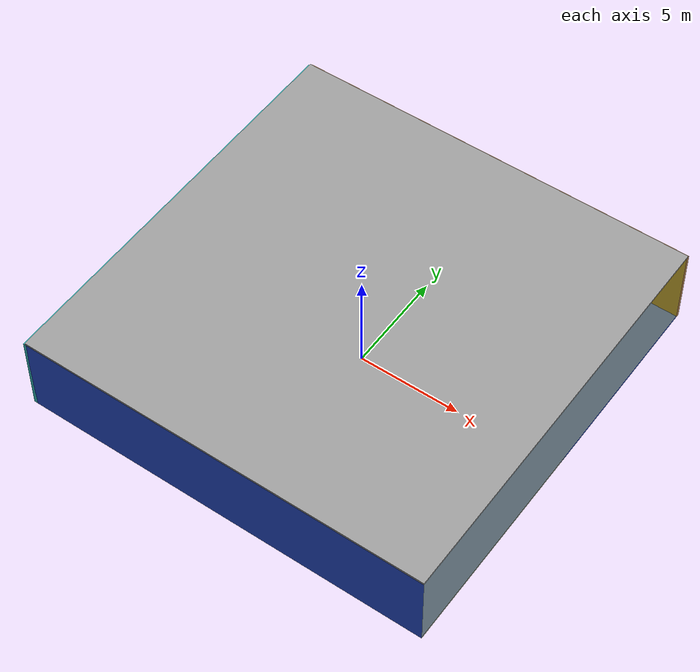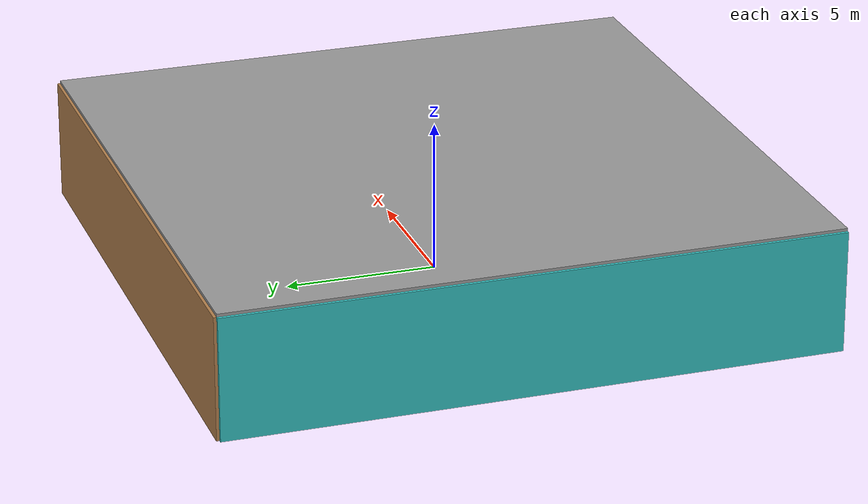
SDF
<sdf version="1.4">
 <world name="default">
  <physics type="ode">
   <max_step_size>0.001</max_step_size>
   <real_time_factor>1</real_time_factor>
   <real_time_update_rate>1000</real_time_update_rate>
   <gravity>0 0 -9.8</gravity>
  </physics>
  <scene><ambient>0.4 0.4 0.4 1</ambient><background>0.7 0.7 0.7 1</background><shadows>1</shadows></scene>
  <model name="Surrounding">
   <static>1</static>
   <link name="Ceiling">
    <collision name="Ceiling_Collision"><geometry><box><size>20 20 0.1</size></box></geometry></collision>
    <visual name="Ceiling_Visual">
     <geometry><box><size>20 20 0.1</size></box></geometry>
     <material>
      <script><uri>file://media/materials/scripts/gazebo.material</uri><name>Gazebo/Grey</name></script>
     </material>
    </visual>
    <pose>0 0 4.05 0 0 0</pose>
   </link>
   <link name="Wall_South">
    <collision name="Wall_South_Collision">
     <geometry><box><size>20 0 4</size></box></geometry>
     <pose>0 0 2 0 -0 0</pose>
    </collision>
    <visual name="Wall_South_Visual">
     <pose>0 0 2 0 -0 0</pose>
     <geometry><box><size>20 0 4</size></box></geometry>
     <material>
      <script><uri>file://media/materials/scripts/gazebo.material</uri><name>Gazebo/BlueLaser</name></script>
     </material>
    </visual>
    <velocity_decay><linear>0</linear><angular>0</angular></velocity_decay>
    <pose>0 -10 0 0 -0 0</pose>
   </link>
   <link name="Wall_East">
    <collision name="Wall_21_Collision">
     <geometry><box><size>20 0 4</size></box></geometry>
     <pose>0 0 2 0 -0 0</pose>
    </collision>
    <visual name="Wall_21_Visual">
     <pose>0 0 2 0 -0 0</pose>
     <geometry><box><size>20 0 4</size></box></geometry>
     <material>
      <script>
       <uri>file://media/materials/scripts/gazebo.material</uri>
       <name>Gazebo/YellowTransparent</name>
      </script>
     </material>
    </visual>
    <velocity_decay><linear>0</linear><angular>0</angular></velocity_decay>
    <pose>10 0 0 0 -0 1.5708</pose>
   </link>
   <link name="Wall_North">
    <collision name="Wall_22_Collision">
     <geometry><box><size>20 0.2 4</size></box></geometry>
     <pose>0 0 2 0 -0 0</pose>
    </collision>
    <visual name="Wall_22_Visual">
     <pose>0 0 2 0 -0 0</pose>
     <geometry><box><size>20 0.2 4</size></box></geometry>
     <material>
      <script><uri>file://media/materials/scripts/gazebo.material</uri><name>Gazebo/WoodPallet</name></script>
     </material>
    </visual>
    <velocity_decay><linear>0</linear><angular>0</angular></velocity_decay>
    <pose>0 10 0 0 -0 0</pose>
   </link>
   <link name="Wall_West">
    <collision name="Wall_23_Collision">
     <geometry><box><size>20 0.2 4</size></box></geometry>
     <pose>0 0 2 0 -0 0</pose>
    </collision>
    <visual name="Wall_23_Visual">
     <pose>0 0 2 0 -0 0</pose>
     <geometry><box><size>20 0.2 4</size></box></geometry>
     <material>
      <script><uri>file://media/materials/scripts/gazebo.material</uri><name>Gazebo/TurquoiseGlow</name></script>
     </material>
    </visual>
    <velocity_decay><linear>0</linear><angular>0</angular></velocity_decay>
    <pose>-10 0 0 0 0 -1.5708</pose>
   </link>
   <link name="Ground_link">
    <collision name="collision">
     <pose>0 0 .05 0 -0 0</pose>
     <geometry><box><size>20 20 0.1</size></box></geometry>
    </collision>
    <visual name="visual">
     <pose>0 0 .05 0 -0 0</pose>
     <geometry><box><size>20 20 0.1</size></box></geometry>
     <material>
      <script><uri>file://media/materials/scripts/gazebo.material</uri><name>Gazebo/BlueGlow</name></script>
     </material>
    </visual>
   </link>
   <static>1</static>
  </model>
  <spherical_coordinates>
   <surface_model>EARTH_WGS84</surface_model>
   <latitude_deg>0</latitude_deg>
   <longitude_deg>0</longitude_deg>
   <elevation>0</elevation>
   <heading_deg>0</heading_deg>
  </spherical_coordinates>
  <light name="lightball_0" type="diffuse">
   <diffuse>0.8 0.8 0.8 1</diffuse>
   <specular>0.2 0.2 0.2 1</specular>
   <attenuation>
    <range>100</range>
    <constant>0.7</constant>
    <linear>0.01</linear>
    <quadratic>0.001</quadratic>
   </attenuation>
   <direction>-0.5 0.1 -0.9</direction>
   <pose>3.55845850325 -6.72735919545 3.46662264794 0 0 0</pose>
  </light>
  <light name="lightball_1" type="diffuse">
   <diffuse>0.8 0.8 0.8 1</diffuse>
   <specular>0.2 0.2 0.2 1</specular>
   <attenuation>
    <range>100</range>
    <constant>0.7</constant>
    <linear>0.01</linear>
    <quadratic>0.001</quadratic>
   </attenuation>
   <direction>-0.5 0.1 -0.9</direction>
   <pose>-0.657201428274 -1.68512240635 3.2231824823 0 0 0</pose>
  </light>
  <light name="lightball_2" type="diffuse">
   <diffuse>0.8 0.8 0.8 1</diffuse>
   <specular>0.2 0.2 0.2 1</specular>
   <attenuation>
    <range>100</range>
    <constant>0.7</constant>
    <linear>0.01</linear>
    <quadratic>0.001</quadratic>
   </attenuation>
   <direction>-0.5 0.1 -0.9</direction>
   <pose>0.972845954872 1.02797178351 3.12231742599 0 0 0</pose>
  </light>
  <light name="lightball_3" type="diffuse">
   <diffuse>0.8 0.8 0.8 1</diffuse>
   <specular>0.2 0.2 0.2 1</specular>
   <attenuation>
    <range>100</range>
    <constant>0.7</constant>
    <linear>0.01</linear>
    <quadratic>0.001</quadratic>
   </attenuation>
   <direction>-0.5 0.1 -0.9</direction>
   <pose>-6.40773563351 7.17833876745 2.54073130732 0 0 0</pose>
  </light>
  <light name="lightball_4" type="diffuse">
   <diffuse>0.8 0.8 0.8 1</diffuse>
   <specular>0.2 0.2 0.2 1</specular>
   <attenuation>
    <range>100</range>
    <constant>0.7</constant>
    <linear>0.01</linear>
    <quadratic>0.001</quadratic>
   </attenuation>
   <direction>-0.5 0.1 -0.9</direction>
   <pose>0.018688841885 0.588862705459 3.66377776507 0 0 0</pose>
  </light>
  <light name="lightball_5" type="diffuse">
   <diffuse>0.8 0.8 0.8 1</diffuse>
   <specular>0.2 0.2 0.2 1</specular>
   <attenuation>
    <range>100</range>
    <constant>0.7</constant>
    <linear>0.01</linear>
    <quadratic>0.001</quadratic>
   </attenuation>
   <direction>-0.5 0.1 -0.9</direction>
   <pose>2.12081366443 9.25017523118 3.50156811292 0 0 0</pose>
  </light>
  <light name="lightball_6" type="diffuse">
   <diffuse>0.8 0.8 0.8 1</diffuse>
   <specular>0.2 0.2 0.2 1</specular>
   <attenuation>
    <range>100</range>
    <constant>0.7</constant>
    <linear>0.01</linear>
    <quadratic>0.001</quadratic>
   </attenuation>
   <direction>-0.5 0.1 -0.9</direction>
   <pose>5.74253735076 -6.00512056189 0.785468711725 0 0 0</pose>
  </light>
  <light name="lightball_7" type="diffuse">
   <diffuse>0.8 0.8 0.8 1</diffuse>
   <specular>0.2 0.2 0.2 1</specular>
   <attenuation>
    <range>100</range>
    <constant>0.7</constant>
    <linear>0.01</linear>
    <quadratic>0.001</quadratic>
   </attenuation>
   <direction>-0.5 0.1 -0.9</direction>
   <pose>5.62816836114 -6.10089453739 2.8000352526 0 0 0</pose>
  </light>
  <include><uri>model://cabinet</uri><pose>-7.83185758198 -6.82360529614 0 0 0 0.375922543964</pose></include>
  <include>
   <uri>model://textured_shapes</uri>
   <pose>-5.03966085662 8.24714874708 0 0 0 1.18896709717</pose>
  </include>
  <include>
   <uri>model://robocup_3Dsim_goal</uri>
   <pose>-1.98467257781 -7.17751692458 0 0 0 2.32087194406</pose>
  </include>
  <include><uri>model://table</uri><pose>-1.92086994184 1.42434149302 0 0 0 2.81321267714</pose></include>
  <include>
   <uri>model://textured_shapes</uri>
   <pose>-1.46546522654 4.43208784237 0 0 0 2.89029462213</pose>
  </include>
  <include>
   <uri>model://construction_cone</uri>
   <pose>0.972131861397 -4.76433106687 0 0 0 0.434144731811</pose>
  </include>
  <include><uri>model://cabinet</uri><pose>0.972993842175 4.33799005915 0 0 0 2.06662406756</pose></include>
 </world>
</sdf>

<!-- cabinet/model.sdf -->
<sdf version="1.5">
  <model name="cabinet">
    <static>true</static>
    <link name="cabinet_bottom_plate">
      <inertial>
        <pose>0 0 -1 0 0 0</pose>
        <inertia>
          <ixx>2.050000</ixx>
          <ixy>0</ixy>
          <ixz>0</ixz>
          <iyy>2.050000</iyy>
          <iyz>0</iyz>
          <izz>2.050000</izz>
        </inertia>
        <mass>25.000000</mass>
      </inertial>
      <collision name="cabinet_bottom_plate_geom">
        <pose>0 0 0.010000 0 0 0</pose>
        <geometry>
          <box>
            <size>0.450000 0.450000 0.020000</size>
          </box>
        </geometry>
      </collision>
      <visual name="cabinet_bottom_plate_geom_visual">
        <pose>0 0 0.010000 0 0 0</pose>
        <geometry>
          <box>
            <size>0.450000 0.450000 0.020000</size>
          </box>
        </geometry>
        <material>
          <script>
            <uri>model://media/materials/scripts/gazebo.material</uri>
            <name>Gazebo/Wood</name>
          </script>
        </material>
      </visual>
      <collision name="cabinet_bottom_plate_geom_cabinet_back_plate">
        <pose>0.235000 0 0.510000 0 0 0</pose>
        <geometry>
          <box>
            <size>0.020000 0.450000 1.020000</size>
          </box>
        </geometry>
      </collision>
      <visual name="cabinet_bottom_plate_geom_cabinet_back_plate_visual">
        <pose>0.235000 0 0.510000 0 0 0</pose>
        <geometry>
          <box>
            <size>0.020000 0.450000 1.020000</size>
          </box>
        </geometry>
        <material>
          <script>
            <uri>model://media/materials/scripts/gazebo.material</uri>
            <name>Gazebo/Wood</name>
          </script>
        </material>
      </visual>
      <collision name="cabinet_bottom_plate_geom_cabinet_left_plate">
        <pose>0 0.235000 0.510000 0 0 0</pose>
        <geometry>
          <box>
            <size>0.450000 0.020000 1.020000</size>
          </box>
        </geometry>
      </collision>
      <visual name="cabinet_bottom_plate_geom_cabinet_left_plate_visual">
        <pose>0 0.235000 0.510000 0 0 0</pose>
        <geometry>
          <box>
            <size>0.450000 0.020000 1.020000</size>
          </box>
        </geometry>
        <material>
          <script>
            <uri>model://media/materials/scripts/gazebo.material</uri>
            <name>Gazebo/Wood</name>
          </script>
        </material>
      </visual>
      <collision name="cabinet_bottom_plate_geom_cabinet_middle_plate">
        <pose>0 0 0.510000 0 0 0</pose>
        <geometry>
          <box>
            <size>0.450000 0.450000 0.020000</size>
          </box>
        </geometry>
      </collision>
      <visual name="cabinet_bottom_plate_geom_cabinet_middle_plate_visual">
        <pose>0 0 0.510000 0 0 0</pose>
        <geometry>
          <box>
            <size>0.450000 0.450000 0.020000</size>
          </box>
        </geometry>
        <material>
          <script>
            <uri>model://media/materials/scripts/gazebo.material</uri>
            <name>Gazebo/Wood</name>
          </script>
        </material>
      </visual>
      <collision name="cabinet_bottom_plate_geom_cabinet_right_plate">
        <pose>0 -0.235000 0.510000 0 0 0</pose>
        <geometry>
          <box>
            <size>0.450000 0.020000 1.020000</size>
          </box>
        </geometry>
      </collision>
      <visual name="cabinet_bottom_plate_geom_cabinet_right_plate_visual">
        <pose>0 -0.235000 0.510000 0 0 0</pose>
        <geometry>
          <box>
            <size>0.450000 0.020000 1.020000</size>
          </box>
        </geometry>
        <material>
          <script>
            <uri>model://media/materials/scripts/gazebo.material</uri>
            <name>Gazebo/Wood</name>
          </script>
        </material>
      </visual>
      <collision name="cabinet_bottom_plate_geom_cabinet_top_plate">
        <pose>0 0 1.010000 0 0 0</pose>
        <geometry>
          <box>
            <size>0.450000 0.450000 0.020000</size>
          </box>
        </geometry>
      </collision>
      <visual name="cabinet_bottom_plate_geom_cabinet_top_plate_visual">
        <pose>0 0 1.010000 0 0 0</pose>
        <geometry>
          <box>
            <size>0.450000 0.450000 0.020000</size>
          </box>
        </geometry>
        <material>
          <script>
            <uri>model://media/materials/scripts/gazebo.material</uri>
            <name>Gazebo/Wood</name>
          </script>
        </material>
      </visual>
    </link>
  </model>
</sdf>

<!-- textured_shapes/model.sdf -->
<sdf version="1.6">
  <model name="textured_shapes">
    <pose>0 0 0.5 0 0 0</pose>
    <link name="box">
      <pose>0 -1.5 0 0 0 0</pose>
      <collision name="collision">
        <geometry>
          <box>
            <size>1 1 1</size>
          </box>
        </geometry>
      </collision>
      <visual name="visual">
        <geometry>
          <box>
            <size>1 1 1</size>
          </box>
        </geometry>
        <material>
          <script>
            <uri>model://../model_source/models/textured_shapes/materials/scripts</uri>
            <uri>model://../model_source/models/textured_shapes/materials/textures</uri>
            <name>TexturedShape/Squares</name>
          </script>
        </material>
      </visual>
    </link>
    <link name="sphere">
      <collision name="collision">
        <geometry>
          <sphere>
            <radius>0.5</radius>
          </sphere>
        </geometry>
      </collision>
      <visual name="visual">
        <geometry>
          <sphere>
            <radius>0.5</radius>
          </sphere>
        </geometry>
        <material>
          <script>
            <uri>model://../model_source/models/textured_shapes/materials/scripts</uri>
            <uri>model://../model_source/models/textured_shapes/materials/textures</uri>
            <name>TexturedShape/Squares</name>
          </script>
        </material>
      </visual>
    </link>
    <link name="cylinder">
      <pose>0 1.5 0 0 0 0</pose>
      <collision name="collision">
        <geometry>
          <cylinder>
            <radius>0.5</radius>
            <length>1</length>
          </cylinder>
        </geometry>
      </collision>
      <visual name="visual">
        <geometry>
          <cylinder>
            <radius>0.5</radius>
            <length>1</length>
          </cylinder>
        </geometry>
        <material>
          <script>
            <uri>model://../model_source/models/textured_shapes/materials/scripts</uri>
            <uri>model://../model_source/models/textured_shapes/materials/textures</uri>
            <name>TexturedShape/Squares</name>
          </script>
        </material>
      </visual>
    </link>
  </model>
</sdf>

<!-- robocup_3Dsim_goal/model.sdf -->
<sdf version="1.5">
  <model name="robocup_3d_goal">
    <static>true</static>
    <link name="left_post">
      <pose>0 1.05 0.45 0 0 0</pose>
      <collision name="collision">
        <geometry>
          <cylinder>
            <radius>0.05</radius>
            <length>0.9</length>
          </cylinder>
        </geometry>
      </collision>
      <visual name="visual">
        <geometry>
          <cylinder>
            <radius>0.05</radius>
            <length>0.9</length>
          </cylinder>
        </geometry>
        <material>
          <script>
            <uri>file://media/materials/scripts/gazebo.material</uri>
            <name>Gazebo/ZincYellow</name>
          </script>
        </material>
      </visual>
    </link>
    <link name="left_support_horiz_lower">
      <pose>0.30 1.05 0.01 0 0 0</pose>
      <collision name="collision">
        <geometry>
          <box>
            <size>0.50 0.02 0.02</size>
          </box>
        </geometry>
      </collision>
      <visual name="visual">
        <geometry>
          <box>
            <size>0.50 0.02 0.02</size>
          </box>
        </geometry>
        <material>
          <script>
            <uri>file://media/materials/scripts/gazebo.material</uri>
            <name>Gazebo/White</name>
          </script>
        </material>
      </visual>
    </link>
    <link name="left_support_horiz_upper">
      <pose>0.30 1.05 0.79 0 0 0</pose>
      <collision name="collision">
        <geometry>
          <box>
            <size>0.50 0.02 0.02</size>
          </box>
        </geometry>
      </collision>
      <visual name="visual">
        <geometry>
          <box>
            <size>0.50 0.02 0.02</size>
          </box>
        </geometry>
        <material>
          <script>
            <uri>file://media/materials/scripts/gazebo.material</uri>
            <name>Gazebo/White</name>
          </script>
        </material>
      </visual>
    </link>
    <link name="left_support_vertical">
      <pose>0.56 1.05 0.4 0 1.5708 0</pose>
      <collision name="collision">
        <geometry>
          <box>
            <size>0.80 0.02 0.02</size>
          </box>
        </geometry>
      </collision>
      <visual name="visual">
        <geometry>
          <box>
            <size>0.80 0.02 0.02</size>
          </box>
        </geometry>
        <material>
          <script>
            <uri>file://media/materials/scripts/gazebo.material</uri>
            <name>Gazebo/White</name>
          </script>
        </material>
      </visual>
    </link>
    <link name="right_support_horiz_lower">
      <pose>0.30 -1.05 0.01 0 0 0</pose>
      <collision name="collision">
        <geometry>
          <box>
            <size>0.50 0.02 0.02</size>
          </box>
        </geometry>
      </collision>
      <visual name="visual">
        <geometry>
          <box>
            <size>0.50 0.02 0.02</size>
          </box>
        </geometry>
        <material>
          <script>
            <uri>file://media/materials/scripts/gazebo.material</uri>
            <name>Gazebo/White</name>
          </script>
        </material>
      </visual>
    </link>
    <link name="right_support_horiz_upper">
      <pose>0.30 -1.05 0.79 0 0 0</pose>
      <collision name="collision">
        <geometry>
          <box>
            <size>0.50 0.02 0.02</size>
          </box>
        </geometry>
      </collision>
      <visual name="visual">
        <geometry>
          <box>
            <size>0.50 0.02 0.02</size>
          </box>
        </geometry>
        <material>
          <script>
            <uri>file://media/materials/scripts/gazebo.material</uri>
            <name>Gazebo/White</name>
          </script>
        </material>
      </visual>
    </link>
    <link name="right_support_vertical">
      <pose>0.56 -1.05 0.4 0 1.5708 0</pose>
      <collision name="collision">
        <geometry>
          <box>
            <size>0.80 0.02 0.02</size>
          </box>
        </geometry>
      </collision>
      <visual name="visual">
        <geometry>
          <box>
            <size>0.80 0.02 0.02</size>
          </box>
        </geometry>
        <material>
          <script>
            <uri>file://media/materials/scripts/gazebo.material</uri>
            <name>Gazebo/White</name>
          </script>
        </material>
      </visual>
    </link>
    <link name="center_support_horiz_lower">
      <pose>0.56 0 0.01 0 1.5708 0</pose>
      <collision name="collision">
        <geometry>
          <box>
            <size>0.02 2.08 0.02</size>
          </box>
        </geometry>
      </collision>
      <visual name="visual">
        <geometry>
          <box>
            <size>0.02 2.08 0.02</size>
          </box>
        </geometry>
        <material>
          <script>
            <uri>file://media/materials/scripts/gazebo.material</uri>
            <name>Gazebo/White</name>
          </script>
        </material>
      </visual>
    </link>
    <link name="center_support_horiz_upper">
      <pose>0.56 0 0.79 0 1.5708 0</pose>
      <collision name="collision">
        <geometry>
          <box>
            <size>0.02 2.08 0.02</size>
          </box>
        </geometry>
      </collision>
      <visual name="visual">
        <geometry>
          <box>
            <size>0.02 2.08 0.02</size>
          </box>
        </geometry>
        <material>
          <script>
            <uri>file://media/materials/scripts/gazebo.material</uri>
            <name>Gazebo/White</name>
          </script>
        </material>
      </visual>
    </link>
    <link name="right_post">
      <pose>0 -1.05 0.45 0 0 0</pose>
      <collision name="collision">
        <geometry>
          <cylinder>
            <radius>0.05</radius>
            <length>0.9</length>
          </cylinder>
        </geometry>
      </collision>
      <visual name="visual">
        <geometry>
          <cylinder>
            <radius>0.05</radius>
            <length>0.9</length>
          </cylinder>
        </geometry>
        <material>
          <script>
            <uri>file://media/materials/scripts/gazebo.material</uri>
            <name>Gazebo/ZincYellow</name>
          </script>
        </material>
      </visual>
    </link>
    <link name="crossbar">
      <pose>0 0 0.85 1.57 1.57 0</pose>
      <collision name="collision">
        <geometry>
          <cylinder>
            <radius>0.05</radius>
            <length>2.0</length>
          </cylinder>
        </geometry>
      </collision>
      <visual name="visual">
        <geometry>
          <cylinder>
            <radius>0.05</radius>
            <length>2.0</length>
          </cylinder>
        </geometry>
        <material>
          <script>
            <uri>file://media/materials/scripts/gazebo.material</uri>
            <name>Gazebo/ZincYellow</name>
          </script>
        </material>
      </visual>
    </link>
    <link name="center_net">
      <pose>0.56 0 0.40 0 0 0</pose>
      <collision name="collision">
        <geometry>
          <box>
            <size>0.01 2.1 0.80</size>
          </box>
        </geometry>
      </collision>
      <visual name="visual">
        <geometry>
          <box>
            <size>0.01 2.1 0.80</size>
          </box>
        </geometry>
        <material>
          <script>
            <uri>model://../model_source/models/robocup09_spl_field/materials/scripts/</uri>
            <uri>model://../model_source/models/robocup09_spl_field/materials/textures/</uri>
            <name>RoboCup/Net</name>
          </script>
        </material>
      </visual>
    </link>
    <link name="left_net">
      <pose>0.30 1.05 0.40 0 0 0</pose>
      <collision name="collision">
        <geometry>
          <box>
            <size>0.50 0.01 0.76</size>
          </box>
        </geometry>
      </collision>
      <visual name="visual">
        <geometry>
          <box>
            <size>0.50 0.01 0.76</size>
          </box>
        </geometry>
        <material>
          <script>
            <uri>model://../model_source/models/robocup09_spl_field/materials/scripts/</uri>
            <uri>model://../model_source/models/robocup09_spl_field/materials/textures/</uri>
            <name>RoboCup/Net</name>
          </script>
        </material>
      </visual>
    </link>
    <link name="right_net">
      <pose>0.30 -1.05 0.40 0 0 0</pose>
      <collision name="collision">
        <geometry>
          <box>
            <size>0.50 0.01 0.76</size>
          </box>
        </geometry>
      </collision>
      <visual name="visual">
        <geometry>
          <box>
            <size>0.50 0.01 0.76</size>
          </box>
        </geometry>
        <material>
          <script>
            <uri>model://../model_source/models/robocup09_spl_field/materials/scripts/</uri>
            <uri>model://../model_source/models/robocup09_spl_field/materials/textures/</uri>
            <name>RoboCup/Net</name>
          </script>
        </material>
      </visual>
    </link>
  </model>
</sdf>

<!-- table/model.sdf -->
<sdf version="1.5">
  <model name="table">
    <static>true</static>
    <link name="link">
      <collision name="surface">
        <pose>0 0 1.0 0 0 0</pose>
        <geometry>
          <box>
            <size>1.5 0.8 0.03</size>
          </box>
        </geometry>
        <surface>
          <friction>
            <ode>
              <mu>0.6</mu>
              <mu2>0.6</mu2>
            </ode>
          </friction>
        </surface>
      </collision>
      <visual name="visual1">
        <pose>0 0 1.0 0 0 0</pose>
        <geometry>
          <box>
            <size>1.5 0.8 0.03</size>
          </box>
        </geometry>
        <material>
          <script>
            <uri>model://media/materials/scripts/gazebo.material</uri>
            <name>Gazebo/Wood</name>
          </script>
        </material>
      </visual>
      <collision name="front_left_leg">
        <pose>0.68 0.38 0.5 0 0 0</pose>
        <geometry>
          <cylinder>
            <radius>0.02</radius>
            <length>1.0</length>
          </cylinder>
        </geometry>
      </collision>
      <visual name="front_left_leg">
        <pose>0.68 0.38 0.5 0 0 0</pose>
        <geometry>
          <cylinder>
            <radius>0.02</radius>
            <length>1.0</length>
          </cylinder>
        </geometry>
        <material>
          <script>
            <uri>model://media/materials/scripts/gazebo.material</uri>
            <name>Gazebo/Grey</name>
          </script>
        </material>
      </visual>
      <collision name="front_right_leg">
        <pose>0.68 -0.38 0.5 0 0 0</pose>
        <geometry>
          <cylinder>
            <radius>0.02</radius>
            <length>1.0</length>
          </cylinder>
        </geometry>
      </collision>
      <visual name="front_right_leg">
        <pose>0.68 -0.38 0.5 0 0 0</pose>
        <geometry>
          <cylinder>
            <radius>0.02</radius>
            <length>1.0</length>
          </cylinder>
        </geometry>
        <material>
          <script>
            <uri>model://media/materials/scripts/gazebo.material</uri>
            <name>Gazebo/Grey</name>
          </script>
        </material>
      </visual>
      <collision name="back_right_leg">
        <pose>-0.68 -0.38 0.5 0 0 0</pose>
        <geometry>
          <cylinder>
            <radius>0.02</radius>
            <length>1.0</length>
          </cylinder>
        </geometry>
      </collision>
      <visual name="back_right_leg">
        <pose>-0.68 -0.38 0.5 0 0 0</pose>
        <geometry>
          <cylinder>
            <radius>0.02</radius>
            <length>1.0</length>
          </cylinder>
        </geometry>
        <material>
          <script>
            <uri>model://media/materials/scripts/gazebo.material</uri>
            <name>Gazebo/Grey</name>
          </script>
        </material>
      </visual>
      <collision name="back_left_leg">
        <pose>-0.68 0.38 0.5 0 0 0</pose>
        <geometry>
          <cylinder>
            <radius>0.02</radius>
            <length>1.0</length>
          </cylinder>
        </geometry>
      </collision>
      <visual name="back_left_leg">
        <pose>-0.68 0.38 0.5 0 0 0</pose>
        <geometry>
          <cylinder>
            <radius>0.02</radius>
            <length>1.0</length>
          </cylinder>
        </geometry>
        <material>
          <script>
            <uri>model://media/materials/scripts/gazebo.material</uri>
            <name>Gazebo/Grey</name>
          </script>
        </material>
      </visual>
    </link>
  </model>
</sdf>

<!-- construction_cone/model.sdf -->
<sdf version="1.5">
  <model name="Construction Cone">
    <link name="link">
      <collision name="collision">
        <geometry>
          <mesh>
            <scale>10 10 10</scale>
            <uri>file://isr-testbed/construction_cone/meshes/construction_cone.dae</uri>
          </mesh>
        </geometry>
      </collision>
      <visual name="visual">
        <geometry>
          <mesh>
            <scale>10 10 10</scale>
            <uri>file://isr-testbed/construction_cone/meshes/construction_cone.dae</uri>
          </mesh>
        </geometry>
      </visual>
    </link>
  </model>
</sdf>
